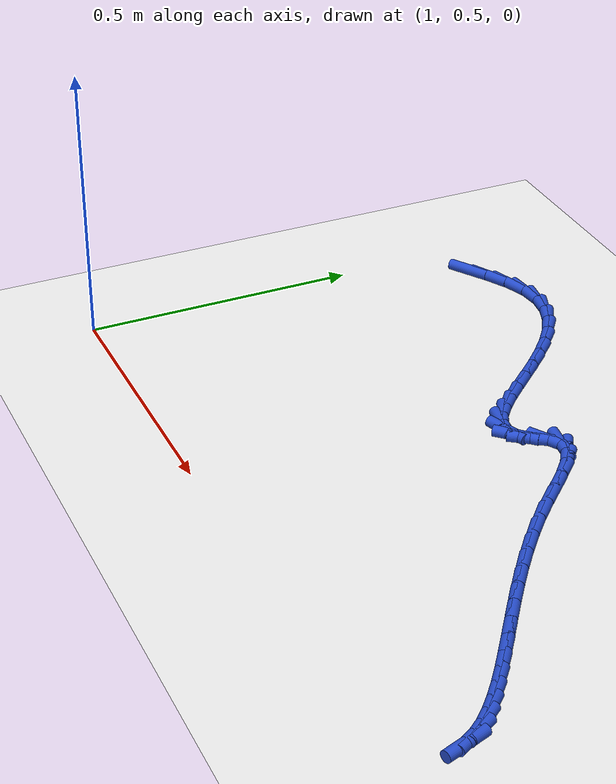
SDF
<sdf version="1.6">
 <world name="default">
  <model name="ground_plane">
   <static>1</static>
   <link name="link">
    <collision name="collision">
     <geometry><plane><normal>0 0 1</normal><size>100 100</size></plane></geometry>
     <surface><friction><ode><mu>100</mu><mu2>50</mu2></ode></friction></surface>
    </collision>
    <visual name="visual">
     <cast_shadows>0</cast_shadows>
     <geometry><plane><normal>0 0 1</normal><size>100 100</size></plane></geometry>
     <material>
      <script><uri>file://media/materials/scripts/gazebo.material</uri><name>Gazebo/WhiteGlow</name></script>
     </material>
    </visual>
   </link>
  </model>
  <model name="line">
   <link name="link_61">
    <pose>1.0952215724235608 1.2213274864183021 0.01 0 1.57 0.5596454457452085</pose>
    <collision name="collision">
     <geometry><cylinder><radius>0.01</radius><length>0.08</length></cylinder></geometry>
    </collision>
    <visual name="visual">
     <material>
      <script><name>Gazebo/Blue</name><uri>file://media/materials/scripts/gazebo.material</uri></script>
     </material>
     <geometry><cylinder><radius>0.01</radius><length>0.08</length></cylinder></geometry>
    </visual>
   </link>
   <link name="link_62">
    <pose>1.1329292417560441 1.244949671839344 0.01 0 1.57 0.48624305096084397</pose>
    <collision name="collision">
     <geometry><cylinder><radius>0.01</radius><length>0.08</length></cylinder></geometry>
    </collision>
    <visual name="visual">
     <material>
      <script><name>Gazebo/Blue</name><uri>file://media/materials/scripts/gazebo.material</uri></script>
     </material>
     <geometry><cylinder><radius>0.01</radius><length>0.08</length></cylinder></geometry>
    </visual>
   </link>
   <link name="link_63">
    <pose>1.1726623509120127 1.265951479349699 0.01 0 1.57 0.3379187475362613</pose>
    <collision name="collision">
     <geometry><cylinder><radius>0.01</radius><length>0.08</length></cylinder></geometry>
    </collision>
    <visual name="visual">
     <material>
      <script><name>Gazebo/Blue</name><uri>file://media/materials/scripts/gazebo.material</uri></script>
     </material>
     <geometry><cylinder><radius>0.01</radius><length>0.08</length></cylinder></geometry>
    </visual>
   </link>
   <link name="link_64">
    <pose>1.212391881355388 1.279912313911078 0.01 0 1.57 0.10249268913008208</pose>
    <collision name="collision">
     <geometry><cylinder><radius>0.01</radius><length>0.08</length></cylinder></geometry>
    </collision>
    <visual name="visual">
     <material>
      <script><name>Gazebo/Blue</name><uri>file://media/materials/scripts/gazebo.material</uri></script>
     </material>
     <geometry><cylinder><radius>0.01</radius><length>0.08</length></cylinder></geometry>
    </visual>
   </link>
   <link name="link_65">
    <pose>1.2505951078275404 1.2838416338136704 0.01 0 1.57 -0.1436800712177673</pose>
    <collision name="collision">
     <geometry><cylinder><radius>0.01</radius><length>0.08</length></cylinder></geometry>
    </collision>
    <visual name="visual">
     <material>
      <script><name>Gazebo/Blue</name><uri>file://media/materials/scripts/gazebo.material</uri></script>
     </material>
     <geometry><cylinder><radius>0.01</radius><length>0.08</length></cylinder></geometry>
    </visual>
   </link>
   <link name="link_66">
    <pose>1.2870987219813668 1.2785603999525585 0.01 0 1.57 -0.3580870850440642</pose>
    <collision name="collision">
     <geometry><cylinder><radius>0.01</radius><length>0.08</length></cylinder></geometry>
    </collision>
    <visual name="visual">
     <material>
      <script><name>Gazebo/Blue</name><uri>file://media/materials/scripts/gazebo.material</uri></script>
     </material>
     <geometry><cylinder><radius>0.01</radius><length>0.08</length></cylinder></geometry>
    </visual>
   </link>
   <link name="link_67">
    <pose>1.3219517854849698 1.2655176696139137 0.01 0 1.57 -0.5271408985628707</pose>
    <collision name="collision">
     <geometry><cylinder><radius>0.01</radius><length>0.08</length></cylinder></geometry>
    </collision>
    <visual name="visual">
     <material>
      <script><name>Gazebo/Blue</name><uri>file://media/materials/scripts/gazebo.material</uri></script>
     </material>
     <geometry><cylinder><radius>0.01</radius><length>0.08</length></cylinder></geometry>
    </visual>
   </link>
   <link name="link_68">
    <pose>1.3552033600064533 1.2461625000839092 0.01 0 1.57 -0.6524090914437022</pose>
    <collision name="collision">
     <geometry><cylinder><radius>0.01</radius><length>0.08</length></cylinder></geometry>
    </collision>
    <visual name="visual">
     <material>
      <script><name>Gazebo/Blue</name><uri>file://media/materials/scripts/gazebo.material</uri></script>
     </material>
     <geometry><cylinder><radius>0.01</radius><length>0.08</length></cylinder></geometry>
    </visual>
   </link>
   <link name="link_69">
    <pose>1.3869025072139194 1.2219439486487162 0.01 0 1.57 -0.7411081937861198</pose>
    <collision name="collision">
     <geometry><cylinder><radius>0.01</radius><length>0.08</length></cylinder></geometry>
    </collision>
    <visual name="visual">
     <material>
      <script><name>Gazebo/Blue</name><uri>file://media/materials/scripts/gazebo.material</uri></script>
     </material>
     <geometry><cylinder><radius>0.01</radius><length>0.08</length></cylinder></geometry>
    </visual>
   </link>
   <link name="link_70">
    <pose>1.4170982887754704 1.1943110725945063 0.01 0 1.57 -0.8000812248342585</pose>
    <collision name="collision">
     <geometry><cylinder><radius>0.01</radius><length>0.08</length></cylinder></geometry>
    </collision>
    <visual name="visual">
     <material>
      <script><name>Gazebo/Blue</name><uri>file://media/materials/scripts/gazebo.material</uri></script>
     </material>
     <geometry><cylinder><radius>0.01</radius><length>0.08</length></cylinder></geometry>
    </visual>
   </link>
   <link name="link_71">
    <pose>1.4458397663592095 1.164712929207453 0.01 0 1.57 -0.8337171769413737</pose>
    <collision name="collision">
     <geometry><cylinder><radius>0.01</radius><length>0.08</length></cylinder></geometry>
    </collision>
    <visual name="visual">
     <material>
      <script><name>Gazebo/Blue</name><uri>file://media/materials/scripts/gazebo.material</uri></script>
     </material>
     <geometry><cylinder><radius>0.01</radius><length>0.08</length></cylinder></geometry>
    </visual>
   </link>
   <link name="link_72">
    <pose>1.4731760016332405 1.1345985757737274 0.01 0 1.57 -0.8433708566133011</pose>
    <collision name="collision">
     <geometry><cylinder><radius>0.01</radius><length>0.08</length></cylinder></geometry>
    </collision>
    <visual name="visual">
     <material>
      <script><name>Gazebo/Blue</name><uri>file://media/materials/scripts/gazebo.material</uri></script>
     </material>
     <geometry><cylinder><radius>0.01</radius><length>0.08</length></cylinder></geometry>
    </visual>
   </link>
   <link name="link_73">
    <pose>1.4991560562656643 1.1054170695795018 0.01 0 1.57 -0.8266911954921412</pose>
    <collision name="collision">
     <geometry><cylinder><radius>0.01</radius><length>0.08</length></cylinder></geometry>
    </collision>
    <visual name="visual">
     <material>
      <script><name>Gazebo/Blue</name><uri>file://media/materials/scripts/gazebo.material</uri></script>
     </material>
     <geometry><cylinder><radius>0.01</radius><length>0.08</length></cylinder></geometry>
    </visual>
   </link>
   <link name="link_74">
    <pose>1.523828991924585 1.0786174679109481 0.01 0 1.57 -0.7757778338628262</pose>
    <collision name="collision">
     <geometry><cylinder><radius>0.01</radius><length>0.08</length></cylinder></geometry>
    </collision>
    <visual name="visual">
     <material>
      <script><name>Gazebo/Blue</name><uri>file://media/materials/scripts/gazebo.material</uri></script>
     </material>
     <geometry><cylinder><radius>0.01</radius><length>0.08</length></cylinder></geometry>
    </visual>
   </link>
   <link name="link_75">
    <pose>1.547243870278105 1.0556488280542384 0.01 0 1.57 -0.6726482017600872</pose>
    <collision name="collision">
     <geometry><cylinder><radius>0.01</radius><length>0.08</length></cylinder></geometry>
    </collision>
    <visual name="visual">
     <material>
      <script><name>Gazebo/Blue</name><uri>file://media/materials/scripts/gazebo.material</uri></script>
     </material>
     <geometry><cylinder><radius>0.01</radius><length>0.08</length></cylinder></geometry>
    </visual>
   </link>
   <link name="link_76">
    <pose>1.5694497529943279 1.0379602072955447 0.01 0 1.57 -0.4801044883233603</pose>
    <collision name="collision">
     <geometry><cylinder><radius>0.01</radius><length>0.08</length></cylinder></geometry>
    </collision>
    <visual name="visual">
     <material>
      <script><name>Gazebo/Blue</name><uri>file://media/materials/scripts/gazebo.material</uri></script>
     </material>
     <geometry><cylinder><radius>0.01</radius><length>0.08</length></cylinder></geometry>
    </visual>
   </link>
   <link name="link_77">
    <pose>1.590495701741355 1.0270006629210393 0.01 0 1.57 -0.13862852482862015</pose>
    <collision name="collision">
     <geometry><cylinder><radius>0.01</radius><length>0.08</length></cylinder></geometry>
    </collision>
    <visual name="visual">
     <material>
      <script><name>Gazebo/Blue</name><uri>file://media/materials/scripts/gazebo.material</uri></script>
     </material>
     <geometry><cylinder><radius>0.01</radius><length>0.08</length></cylinder></geometry>
    </visual>
   </link>
   <link name="link_78">
    <pose>1.6104307781872906 1.0242192522168945 0.01 0 1.57 0.347964666273585</pose>
    <collision name="collision">
     <geometry><cylinder><radius>0.01</radius><length>0.08</length></cylinder></geometry>
    </collision>
    <visual name="visual">
     <material>
      <script><name>Gazebo/Blue</name><uri>file://media/materials/scripts/gazebo.material</uri></script>
     </material>
     <geometry><cylinder><radius>0.01</radius><length>0.08</length></cylinder></geometry>
    </visual>
   </link>
   <link name="link_79">
    <pose>1.6293040440002364 1.0310650324692814 0.01 0 1.57 0.7871172022710609</pose>
    <collision name="collision">
     <geometry><cylinder><radius>0.01</radius><length>0.08</length></cylinder></geometry>
    </collision>
    <visual name="visual">
     <material>
      <script><name>Gazebo/Blue</name><uri>file://media/materials/scripts/gazebo.material</uri></script>
     </material>
     <geometry><cylinder><radius>0.01</radius><length>0.08</length></cylinder></geometry>
    </visual>
   </link>
   <link name="link_80">
    <pose>1.6471645608482957 1.0489870609643732 0.01 0 1.57 0.9598155010798101</pose>
    <collision name="collision">
     <geometry><cylinder><radius>0.01</radius><length>0.08</length></cylinder></geometry>
    </collision>
    <visual name="visual">
     <material>
      <script><name>Gazebo/Blue</name><uri>file://media/materials/scripts/gazebo.material</uri></script>
     </material>
     <geometry><cylinder><radius>0.01</radius><length>0.08</length></cylinder></geometry>
    </visual>
   </link>
   <link name="link_81">
    <pose>1.6647245583183266 1.0740591678278884 0.01 0 1.57 0.5427511859084333</pose>
    <collision name="collision">
     <geometry><cylinder><radius>0.01</radius><length>0.08</length></cylinder></geometry>
    </collision>
    <visual name="visual">
     <material>
      <script><name>Gazebo/Blue</name><uri>file://media/materials/scripts/gazebo.material</uri></script>
     </material>
     <geometry><cylinder><radius>0.01</radius><length>0.08</length></cylinder></geometry>
    </visual>
   </link>
   <link name="link_82">
    <pose>1.684676513578272 1.0860936992326242 0.01 0 1.57 -0.14173220585602372</pose>
    <collision name="collision">
     <geometry><cylinder><radius>0.01</radius><length>0.08</length></cylinder></geometry>
    </collision>
    <visual name="visual">
     <material>
      <script><name>Gazebo/Blue</name><uri>file://media/materials/scripts/gazebo.material</uri></script>
     </material>
     <geometry><cylinder><radius>0.01</radius><length>0.08</length></cylinder></geometry>
    </visual>
   </link>
   <link name="link_83">
    <pose>1.707404347481935 1.0828506888451315 0.01 0 1.57 -0.5462294685490673</pose>
    <collision name="collision">
     <geometry><cylinder><radius>0.01</radius><length>0.08</length></cylinder></geometry>
    </collision>
    <visual name="visual">
     <material>
      <script><name>Gazebo/Blue</name><uri>file://media/materials/scripts/gazebo.material</uri></script>
     </material>
     <geometry><cylinder><radius>0.01</radius><length>0.08</length></cylinder></geometry>
    </visual>
   </link>
   <link name="link_84">
    <pose>1.732598989299024 1.0675341281983755 0.01 0 1.57 -0.7240404344120058</pose>
    <collision name="collision">
     <geometry><cylinder><radius>0.01</radius><length>0.08</length></cylinder></geometry>
    </collision>
    <visual name="visual">
     <material>
      <script><name>Gazebo/Blue</name><uri>file://media/materials/scripts/gazebo.material</uri></script>
     </material>
     <geometry><cylinder><radius>0.01</radius><length>0.08</length></cylinder></geometry>
    </visual>
   </link>
   <link name="link_85">
    <pose>1.759951368299248 1.0433480088253215 0.01 0 1.57 -0.796415685612915</pose>
    <collision name="collision">
     <geometry><cylinder><radius>0.01</radius><length>0.08</length></cylinder></geometry>
    </collision>
    <visual name="visual">
     <material>
      <script><name>Gazebo/Blue</name><uri>file://media/materials/scripts/gazebo.material</uri></script>
     </material>
     <geometry><cylinder><radius>0.01</radius><length>0.08</length></cylinder></geometry>
    </visual>
   </link>
   <link name="link_86">
    <pose>1.7891524137523158 1.013496322258936 0.01 0 1.57 -0.8103338930790904</pose>
    <collision name="collision">
     <geometry><cylinder><radius>0.01</radius><length>0.08</length></cylinder></geometry>
    </collision>
    <visual name="visual">
     <material>
      <script><name>Gazebo/Blue</name><uri>file://media/materials/scripts/gazebo.material</uri></script>
     </material>
     <geometry><cylinder><radius>0.01</radius><length>0.08</length></cylinder></geometry>
    </visual>
   </link>
   <link name="link_87">
    <pose>1.819893054927938 0.9811830600321843 0.01 0 1.57 -0.7816829093061172</pose>
    <collision name="collision">
     <geometry><cylinder><radius>0.01</radius><length>0.08</length></cylinder></geometry>
    </collision>
    <visual name="visual">
     <material>
      <script><name>Gazebo/Blue</name><uri>file://media/materials/scripts/gazebo.material</uri></script>
     </material>
     <geometry><cylinder><radius>0.01</radius><length>0.08</length></cylinder></geometry>
    </visual>
   </link>
   <link name="link_88">
    <pose>1.8518630044038014 0.9494497853096056 0.01 0 1.57 -0.7400006414438959</pose>
    <collision name="collision">
     <geometry><cylinder><radius>0.01</radius><length>0.08</length></cylinder></geometry>
    </collision>
    <visual name="visual">
     <material>
      <script><name>Gazebo/Blue</name><uri>file://media/materials/scripts/gazebo.material</uri></script>
     </material>
     <geometry><cylinder><radius>0.01</radius><length>0.08</length></cylinder></geometry>
    </visual>
   </link>
   <link name="link_89">
    <pose>1.8847376986971198 0.9194322073723455 0.01 0 1.57 -0.7040671406728405</pose>
    <collision name="collision">
     <geometry><cylinder><radius>0.01</radius><length>0.08</length></cylinder></geometry>
    </collision>
    <visual name="visual">
     <material>
      <script><name>Gazebo/Blue</name><uri>file://media/materials/scripts/gazebo.material</uri></script>
     </material>
     <geometry><cylinder><radius>0.01</radius><length>0.08</length></cylinder></geometry>
    </visual>
   </link>
   <link name="link_90">
    <pose>1.918183300887299 0.8910280316783156 0.01 0 1.57 -0.6741626524313565</pose>
    <collision name="collision">
     <geometry><cylinder><radius>0.01</radius><length>0.08</length></cylinder></geometry>
    </collision>
    <visual name="visual">
     <material>
      <script><name>Gazebo/Blue</name><uri>file://media/materials/scripts/gazebo.material</uri></script>
     </material>
     <geometry><cylinder><radius>0.01</radius><length>0.08</length></cylinder></geometry>
    </visual>
   </link>
   <link name="link_91">
    <pose>1.9518658166377214 0.864113948648157 0.01 0 1.57 -0.6502925018718085</pose>
    <collision name="collision">
     <geometry><cylinder><radius>0.01</radius><length>0.08</length></cylinder></geometry>
    </collision>
    <visual name="visual">
     <material>
      <script><name>Gazebo/Blue</name><uri>file://media/materials/scripts/gazebo.material</uri></script>
     </material>
     <geometry><cylinder><radius>0.01</radius><length>0.08</length></cylinder></geometry>
    </visual>
   </link>
   <link name="link_92">
    <pose>1.9854512516117677 0.8385666487025109 0.01 0 1.57 -0.6325650117026385</pose>
    <collision name="collision">
     <geometry><cylinder><radius>0.01</radius><length>0.08</length></cylinder></geometry>
    </collision>
    <visual name="visual">
     <material>
      <script><name>Gazebo/Blue</name><uri>file://media/materials/scripts/gazebo.material</uri></script>
     </material>
     <geometry><cylinder><radius>0.01</radius><length>0.08</length></cylinder></geometry>
    </visual>
   </link>
   <link name="link_93">
    <pose>2.018605611472821 0.8142628222620178 0.01 0 1.57 -0.6212393941173474</pose>
    <collision name="collision">
     <geometry><cylinder><radius>0.01</radius><length>0.08</length></cylinder></geometry>
    </collision>
    <visual name="visual">
     <material>
      <script><name>Gazebo/Blue</name><uri>file://media/materials/scripts/gazebo.material</uri></script>
     </material>
     <geometry><cylinder><radius>0.01</radius><length>0.08</length></cylinder></geometry>
    </visual>
   </link>
   <link name="link_94">
    <pose>2.05099490188426 0.7910791597473189 0.01 0 1.57 -0.6167840602642738</pose>
    <collision name="collision">
     <geometry><cylinder><radius>0.01</radius><length>0.08</length></cylinder></geometry>
    </collision>
    <visual name="visual">
     <material>
      <script><name>Gazebo/Blue</name><uri>file://media/materials/scripts/gazebo.material</uri></script>
     </material>
     <geometry><cylinder><radius>0.01</radius><length>0.08</length></cylinder></geometry>
    </visual>
   </link>
   <link name="link_95">
    <pose>2.082285128509469 0.7688923515790556 0.01 0 1.57 -0.6199547820081559</pose>
    <collision name="collision">
     <geometry><cylinder><radius>0.01</radius><length>0.08</length></cylinder></geometry>
    </collision>
    <visual name="visual">
     <material>
      <script><name>Gazebo/Blue</name><uri>file://media/materials/scripts/gazebo.material</uri></script>
     </material>
     <geometry><cylinder><radius>0.01</radius><length>0.08</length></cylinder></geometry>
    </visual>
   </link>
   <link name="link_96">
    <pose>2.112142297011829 0.7475790881778683 0.01 0 1.57 -0.6319058772193467</pose>
    <collision name="collision">
     <geometry><cylinder><radius>0.01</radius><length>0.08</length></cylinder></geometry>
    </collision>
    <visual name="visual">
     <material>
      <script><name>Gazebo/Blue</name><uri>file://media/materials/scripts/gazebo.material</uri></script>
     </material>
     <geometry><cylinder><radius>0.01</radius><length>0.08</length></cylinder></geometry>
    </visual>
   </link>
   <link name="link_97">
    <pose>2.140232413054721 0.7270160599643983 0.01 0 1.57 -0.6543528623648104</pose>
    <collision name="collision">
     <geometry><cylinder><radius>0.01</radius><length>0.08</length></cylinder></geometry>
    </collision>
    <visual name="visual">
     <material>
      <script><name>Gazebo/Blue</name><uri>file://media/materials/scripts/gazebo.material</uri></script>
     </material>
     <geometry><cylinder><radius>0.01</radius><length>0.08</length></cylinder></geometry>
    </visual>
   </link>
   <link name="link_98">
    <pose>2.1662214823015273 0.7070799573592867 0.01 0 1.57 -0.6898104874092436</pose>
    <collision name="collision">
     <geometry><cylinder><radius>0.01</radius><length>0.08</length></cylinder></geometry>
    </collision>
    <visual name="visual">
     <material>
      <script><name>Gazebo/Blue</name><uri>file://media/materials/scripts/gazebo.material</uri></script>
     </material>
     <geometry><cylinder><radius>0.01</radius><length>0.08</length></cylinder></geometry>
    </visual>
   </link>
   <link name="link_99">
    <pose>2.18977551041563 0.6876474707831746 0.01 0 1.57 -0.7419281880681682</pose>
    <collision name="collision">
     <geometry><cylinder><radius>0.01</radius><length>0.08</length></cylinder></geometry>
    </collision>
    <visual name="visual">
     <material>
      <script><name>Gazebo/Blue</name><uri>file://media/materials/scripts/gazebo.material</uri></script>
     </material>
     <geometry><cylinder><radius>0.01</radius><length>0.08</length></cylinder></geometry>
    </visual>
   </link>
   <link name="link_100">
    <pose>2.210560503060409 0.6685952906567028 0.01 0 1.57 -0.8159069921870681</pose>
    <collision name="collision">
     <geometry><cylinder><radius>0.01</radius><length>0.08</length></cylinder></geometry>
    </collision>
    <visual name="visual">
     <material>
      <script><name>Gazebo/Blue</name><uri>file://media/materials/scripts/gazebo.material</uri></script>
     </material>
     <geometry><cylinder><radius>0.01</radius><length>0.08</length></cylinder></geometry>
    </visual>
   </link>
   <link name="link_101">
    <pose>2.2282424658992475 0.6498001074005122 0.01 0 1.57 -0.9188164630438234</pose>
    <collision name="collision">
     <geometry><cylinder><radius>0.01</radius><length>0.08</length></cylinder></geometry>
    </collision>
    <visual name="visual">
     <material>
      <script><name>Gazebo/Blue</name><uri>file://media/materials/scripts/gazebo.material</uri></script>
     </material>
     <geometry><cylinder><radius>0.01</radius><length>0.08</length></cylinder></geometry>
    </visual>
   </link>
   <link name="link_102">
    <pose>2.242487404595527 0.6311386114352442 0.01 0 1.57 -1.0591131375494043</pose>
    <collision name="collision">
     <geometry><cylinder><radius>0.01</radius><length>0.08</length></cylinder></geometry>
    </collision>
    <visual name="visual">
     <material>
      <script><name>Gazebo/Blue</name><uri>file://media/materials/scripts/gazebo.material</uri></script>
     </material>
     <geometry><cylinder><radius>0.01</radius><length>0.08</length></cylinder></geometry>
    </visual>
   </link>
   <link name="link_103">
    <pose>2.252961324812628 0.6124874931815394 0.01 0 1.57 -1.2435771659194674</pose>
    <collision name="collision">
     <geometry><cylinder><radius>0.01</radius><length>0.08</length></cylinder></geometry>
    </collision>
    <visual name="visual">
     <material>
      <script><name>Gazebo/Blue</name><uri>file://media/materials/scripts/gazebo.material</uri></script>
     </material>
     <geometry><cylinder><radius>0.01</radius><length>0.08</length></cylinder></geometry>
    </visual>
   </link>
  </model>
 </world>
</sdf>
